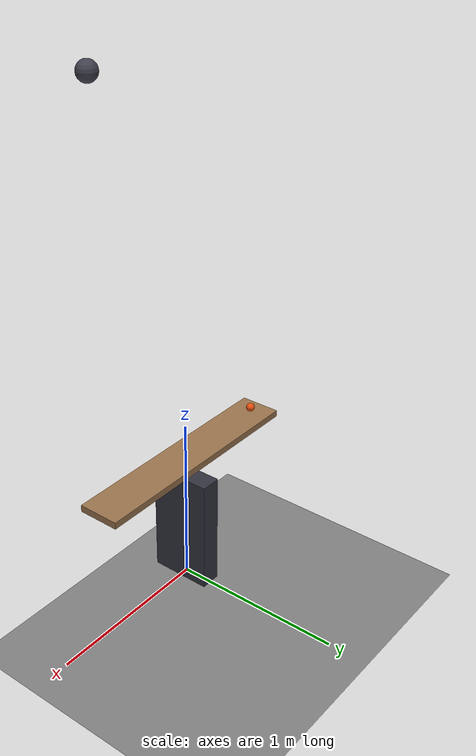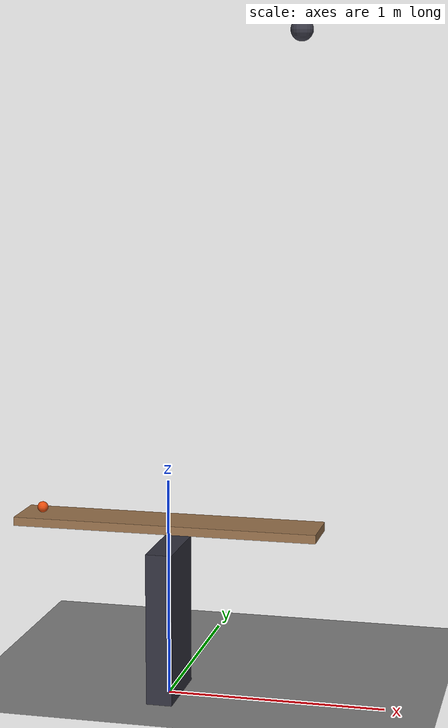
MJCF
<mujoco model="drop-powered_seesaw">
  <compiler angle="radian"/>
  <option timestep="0.002"/>
  <worldbody>
    <geom name="floor" type="plane" size="8 8 0.1" friction="0.8 0.005 0.002"/>
    <body name="stand">
      <geom name="stand" type="box" pos="0 0 0.35" size="0.06 0.18 0.35" rgba="0.2 0.2 0.25 1"/>
    </body>
    <body name="seesaw" pos="0 0 0.8">
      <joint name="seesaw_hinge" type="hinge" pos="0 0 0" axis="0 1 0" limited="true" range="0 0.610865" damping="0.01"/>
      <geom name="seesaw" type="box" pos="0 0 0" size="0.7 0.12 0.02" mass="0.2" friction="0.6 0.001 0.0001" solref="0.01 1" rgba="0.6 0.45 0.3 1"/>
    </body>
    <body name="ball" pos="-0.6 0 0.845">
      <freejoint/>
      <geom name="ball" type="sphere" pos="0 0 0" size="0.025" mass="0.1" condim="6" friction="0.6 0.001 0.0001" solref="0.01 1" rgba="0.9 0.3 0.05 1"/>
    </body>
    <body name="weight" pos="0.6 0 3">
      <freejoint/>
      <geom name="weight" type="sphere" pos="0 0 0" size="0.05" mass="1" friction="0.6 0.001 0.0001" solref="0.01 1" rgba="0.25 0.25 0.3 1"/>
    </body>
  </worldbody>
  <keyframe>
    <key name="start" qpos="0 -0.6 0 0.845 1 0 0 0 0.6 0 3 1 0 0 0" qvel="0 0 0 0 0 0 0 0 0 0 0 0 0"/>
  </keyframe>
</mujoco>
